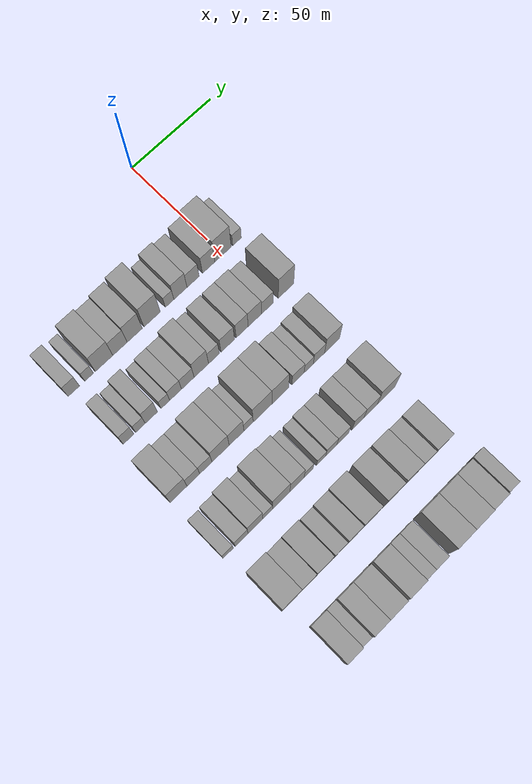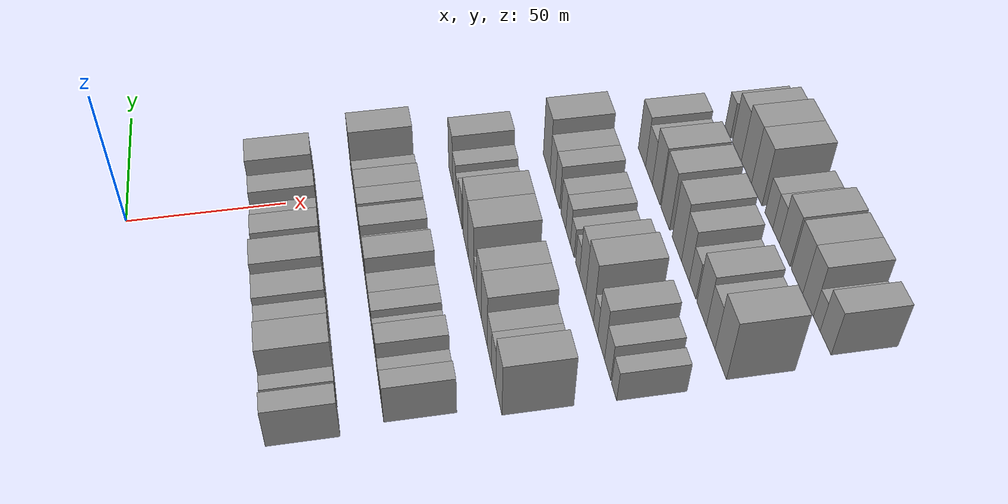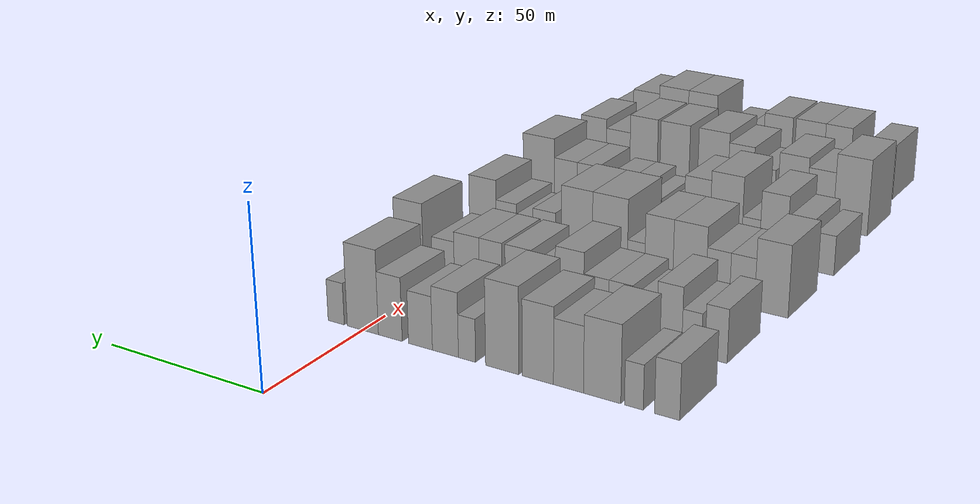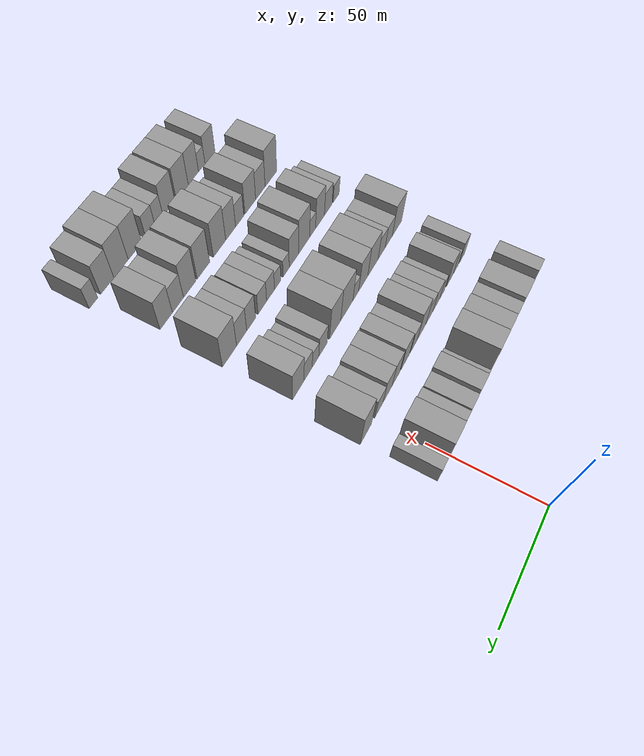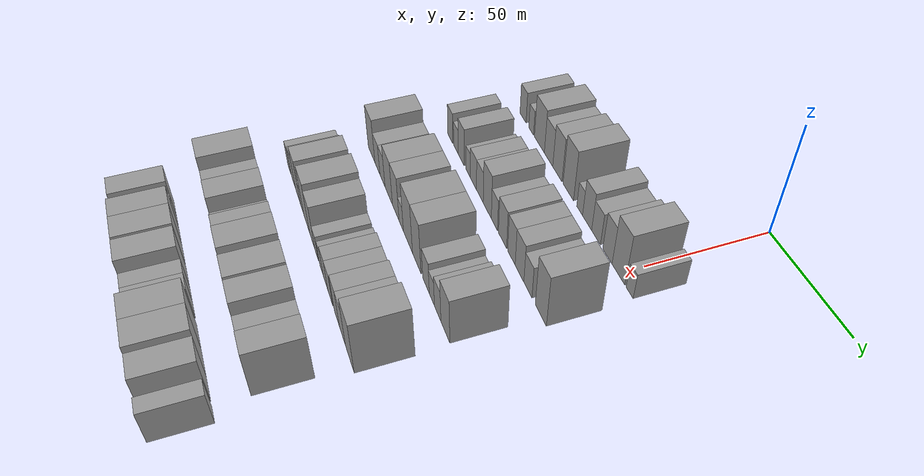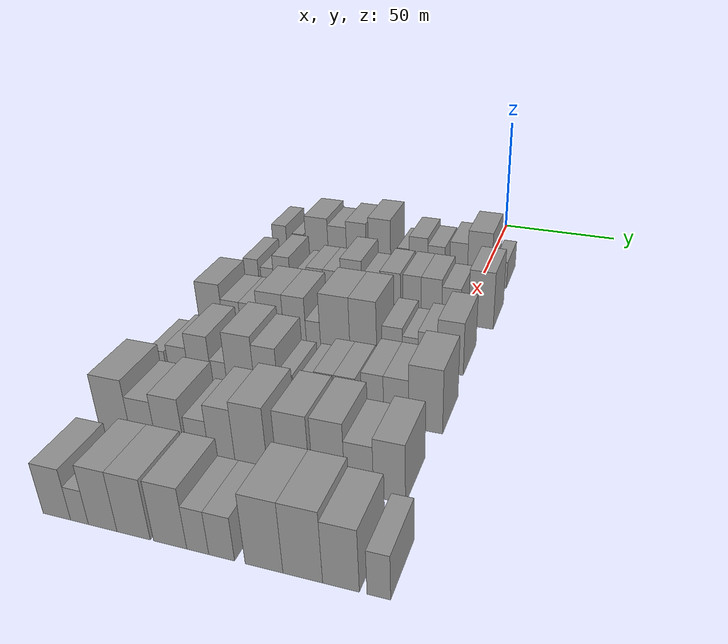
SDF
<sdf version="1.6">
 <world name="default">
  <model name="building_47">
   <static>1</static>
   <pose>50.0000 -89.1114 0 0.000000 0.000000 0.000000</pose>
   <link name="link">
    <pose>0 0 7.50 0 0 0</pose>
    <collision name="collision"><geometry><box><size>20.0000 6.6538 15.0000</size></box></geometry></collision>
    <visual name="visual">
     <cast_shadows>0</cast_shadows>
     <geometry><box><size>20.0000 6.6538 15.0000</size></box></geometry>
     <material>
      <script>
       <uri>model://grey_wall/materials/scripts</uri>
       <uri>model://grey_wall/materials/textures</uri>
       <name>vrc/grey_wall</name>
      </script>
     </material>
    </visual>
   </link>
  </model>
  <model name="building_48">
   <static>1</static>
   <pose>50.0000 -80.2523 0 0.000000 0.000000 0.000000</pose>
   <link name="link">
    <pose>0 0 6.00 0 0 0</pose>
    <collision name="collision"><geometry><box><size>20.0000 5.0644 12.0000</size></box></geometry></collision>
    <visual name="visual">
     <cast_shadows>0</cast_shadows>
     <geometry><box><size>20.0000 5.0644 12.0000</size></box></geometry>
     <material>
      <script>
       <uri>model://grey_wall/materials/scripts</uri>
       <uri>model://grey_wall/materials/textures</uri>
       <name>vrc/grey_wall</name>
      </script>
     </material>
    </visual>
   </link>
  </model>
  <model name="building_49">
   <static>1</static>
   <pose>50.0000 -71.5882 0 0.000000 0.000000 0.000000</pose>
   <link name="link">
    <pose>0 0 10.50 0 0 0</pose>
    <collision name="collision"><geometry><box><size>20.0000 10.2639 21.0000</size></box></geometry></collision>
    <visual name="visual">
     <cast_shadows>0</cast_shadows>
     <geometry><box><size>20.0000 10.2639 21.0000</size></box></geometry>
     <material>
      <script>
       <uri>model://grey_wall/materials/scripts</uri>
       <uri>model://grey_wall/materials/textures</uri>
       <name>vrc/grey_wall</name>
      </script>
     </material>
    </visual>
   </link>
  </model>
  <model name="building_50">
   <static>1</static>
   <pose>50.0000 -62.2357 0 0.000000 0.000000 0.000000</pose>
   <link name="link">
    <pose>0 0 9.00 0 0 0</pose>
    <collision name="collision"><geometry><box><size>20.0000 8.4412 18.0000</size></box></geometry></collision>
    <visual name="visual">
     <cast_shadows>0</cast_shadows>
     <geometry><box><size>20.0000 8.4412 18.0000</size></box></geometry>
     <material>
      <script>
       <uri>model://grey_wall/materials/scripts</uri>
       <uri>model://grey_wall/materials/textures</uri>
       <name>vrc/grey_wall</name>
      </script>
     </material>
    </visual>
   </link>
  </model>
  <model name="building_51">
   <static>1</static>
   <pose>50.0000 -53.5287 0 0.000000 0.000000 0.000000</pose>
   <link name="link">
    <pose>0 0 10.50 0 0 0</pose>
    <collision name="collision"><geometry><box><size>20.0000 8.9727 21.0000</size></box></geometry></collision>
    <visual name="visual">
     <cast_shadows>0</cast_shadows>
     <geometry><box><size>20.0000 8.9727 21.0000</size></box></geometry>
     <material>
      <script>
       <uri>model://grey_wall/materials/scripts</uri>
       <uri>model://grey_wall/materials/textures</uri>
       <name>vrc/grey_wall</name>
      </script>
     </material>
    </visual>
   </link>
  </model>
  <model name="building_52">
   <static>1</static>
   <pose>50.0000 -43.1414 0 0.000000 0.000000 0.000000</pose>
   <link name="link">
    <pose>0 0 12.00 0 0 0</pose>
    <collision name="collision"><geometry><box><size>20.0000 9.8020 24.0000</size></box></geometry></collision>
    <visual name="visual">
     <cast_shadows>0</cast_shadows>
     <geometry><box><size>20.0000 9.8020 24.0000</size></box></geometry>
     <material>
      <script>
       <uri>model://grey_wall/materials/scripts</uri>
       <uri>model://grey_wall/materials/textures</uri>
       <name>vrc/grey_wall</name>
      </script>
     </material>
    </visual>
   </link>
  </model>
  <model name="building_53">
   <static>1</static>
   <pose>50.0000 -32.6499 0 0.000000 0.000000 0.000000</pose>
   <link name="link">
    <pose>0 0 6.00 0 0 0</pose>
    <collision name="collision"><geometry><box><size>20.0000 5.1810 12.0000</size></box></geometry></collision>
    <visual name="visual">
     <cast_shadows>0</cast_shadows>
     <geometry><box><size>20.0000 5.1810 12.0000</size></box></geometry>
     <material>
      <script>
       <uri>model://grey_wall/materials/scripts</uri>
       <uri>model://grey_wall/materials/textures</uri>
       <name>vrc/grey_wall</name>
      </script>
     </material>
    </visual>
   </link>
  </model>
  <model name="building_54">
   <static>1</static>
   <pose>50.0000 -26.0676 0 0.000000 0.000000 0.000000</pose>
   <link name="link">
    <pose>0 0 9.00 0 0 0</pose>
    <collision name="collision"><geometry><box><size>20.0000 7.9837 18.0000</size></box></geometry></collision>
    <visual name="visual">
     <cast_shadows>0</cast_shadows>
     <geometry><box><size>20.0000 7.9837 18.0000</size></box></geometry>
     <material>
      <script>
       <uri>model://grey_wall/materials/scripts</uri>
       <uri>model://grey_wall/materials/textures</uri>
       <name>vrc/grey_wall</name>
      </script>
     </material>
    </visual>
   </link>
  </model>
  <model name="building_55">
   <static>1</static>
   <pose>50.0000 -18.3484 0 0.000000 0.000000 0.000000</pose>
   <link name="link">
    <pose>0 0 7.50 0 0 0</pose>
    <collision name="collision"><geometry><box><size>20.0000 7.4547 15.0000</size></box></geometry></collision>
    <visual name="visual">
     <cast_shadows>0</cast_shadows>
     <geometry><box><size>20.0000 7.4547 15.0000</size></box></geometry>
     <material>
      <script>
       <uri>model://grey_wall/materials/scripts</uri>
       <uri>model://grey_wall/materials/textures</uri>
       <name>vrc/grey_wall</name>
      </script>
     </material>
    </visual>
   </link>
  </model>
  <model name="building_56">
   <static>1</static>
   <pose>50.0000 -8.8292 0 0.000000 0.000000 0.000000</pose>
   <link name="link">
    <pose>0 0 9.00 0 0 0</pose>
    <collision name="collision"><geometry><box><size>20.0000 7.5837 18.0000</size></box></geometry></collision>
    <visual name="visual">
     <cast_shadows>0</cast_shadows>
     <geometry><box><size>20.0000 7.5837 18.0000</size></box></geometry>
     <material>
      <script>
       <uri>model://grey_wall/materials/scripts</uri>
       <uri>model://grey_wall/materials/textures</uri>
       <name>vrc/grey_wall</name>
      </script>
     </material>
    </visual>
   </link>
  </model>
  <model name="building_57">
   <static>1</static>
   <pose>50.0000 0.0270 0 0.000000 0.000000 0.000000</pose>
   <link name="link">
    <pose>0 0 12.00 0 0 0</pose>
    <collision name="collision"><geometry><box><size>20.0000 10.1287 24.0000</size></box></geometry></collision>
    <visual name="visual">
     <cast_shadows>0</cast_shadows>
     <geometry><box><size>20.0000 10.1287 24.0000</size></box></geometry>
     <material>
      <script>
       <uri>model://grey_wall/materials/scripts</uri>
       <uri>model://grey_wall/materials/textures</uri>
       <name>vrc/grey_wall</name>
      </script>
     </material>
    </visual>
   </link>
  </model>
  <model name="building_58">
   <static>1</static>
   <pose>50.0000 8.7703 0 0.000000 0.000000 0.000000</pose>
   <link name="link">
    <pose>0 0 6.00 0 0 0</pose>
    <collision name="collision"><geometry><box><size>20.0000 5.3580 12.0000</size></box></geometry></collision>
    <visual name="visual">
     <cast_shadows>0</cast_shadows>
     <geometry><box><size>20.0000 5.3580 12.0000</size></box></geometry>
     <material>
      <script>
       <uri>model://grey_wall/materials/scripts</uri>
       <uri>model://grey_wall/materials/textures</uri>
       <name>vrc/grey_wall</name>
      </script>
     </material>
    </visual>
   </link>
  </model>
  <model name="building_169">
   <static>1</static>
   <pose>82.0000 -86.5748 0 0.000000 0.000000 0.000000</pose>
   <link name="link">
    <pose>0 0 7.50 0 0 0</pose>
    <collision name="collision"><geometry><box><size>20.0000 6.1973 15.0000</size></box></geometry></collision>
    <visual name="visual">
     <cast_shadows>0</cast_shadows>
     <geometry><box><size>20.0000 6.1973 15.0000</size></box></geometry>
     <material>
      <script>
       <uri>model://grey_wall/materials/scripts</uri>
       <uri>model://grey_wall/materials/textures</uri>
       <name>vrc/grey_wall</name>
      </script>
     </material>
    </visual>
   </link>
  </model>
  <model name="building_170">
   <static>1</static>
   <pose>82.0000 -79.7055 0 0.000000 0.000000 0.000000</pose>
   <link name="link">
    <pose>0 0 6.00 0 0 0</pose>
    <collision name="collision"><geometry><box><size>20.0000 5.5413 12.0000</size></box></geometry></collision>
    <visual name="visual">
     <cast_shadows>0</cast_shadows>
     <geometry><box><size>20.0000 5.5413 12.0000</size></box></geometry>
     <material>
      <script>
       <uri>model://grey_wall/materials/scripts</uri>
       <uri>model://grey_wall/materials/textures</uri>
       <name>vrc/grey_wall</name>
      </script>
     </material>
    </visual>
   </link>
  </model>
  <model name="building_171">
   <static>1</static>
   <pose>82.0000 -73.3323 0 0.000000 0.000000 0.000000</pose>
   <link name="link">
    <pose>0 0 9.00 0 0 0</pose>
    <collision name="collision"><geometry><box><size>20.0000 7.2050 18.0000</size></box></geometry></collision>
    <visual name="visual">
     <cast_shadows>0</cast_shadows>
     <geometry><box><size>20.0000 7.2050 18.0000</size></box></geometry>
     <material>
      <script>
       <uri>model://grey_wall/materials/scripts</uri>
       <uri>model://grey_wall/materials/textures</uri>
       <name>vrc/grey_wall</name>
      </script>
     </material>
    </visual>
   </link>
  </model>
  <model name="building_172">
   <static>1</static>
   <pose>82.0000 -65.1794 0 0.000000 0.000000 0.000000</pose>
   <link name="link">
    <pose>0 0 6.00 0 0 0</pose>
    <collision name="collision"><geometry><box><size>20.0000 5.1008 12.0000</size></box></geometry></collision>
    <visual name="visual">
     <cast_shadows>0</cast_shadows>
     <geometry><box><size>20.0000 5.1008 12.0000</size></box></geometry>
     <material>
      <script>
       <uri>model://grey_wall/materials/scripts</uri>
       <uri>model://grey_wall/materials/textures</uri>
       <name>vrc/grey_wall</name>
      </script>
     </material>
    </visual>
   </link>
  </model>
  <model name="building_173">
   <static>1</static>
   <pose>82.0000 -59.1339 0 0.000000 0.000000 0.000000</pose>
   <link name="link">
    <pose>0 0 7.50 0 0 0</pose>
    <collision name="collision"><geometry><box><size>20.0000 6.9902 15.0000</size></box></geometry></collision>
    <visual name="visual">
     <cast_shadows>0</cast_shadows>
     <geometry><box><size>20.0000 6.9902 15.0000</size></box></geometry>
     <material>
      <script>
       <uri>model://grey_wall/materials/scripts</uri>
       <uri>model://grey_wall/materials/textures</uri>
       <name>vrc/grey_wall</name>
      </script>
     </material>
    </visual>
   </link>
  </model>
  <model name="building_174">
   <static>1</static>
   <pose>82.0000 -51.8982 0 0.000000 0.000000 0.000000</pose>
   <link name="link">
    <pose>0 0 7.50 0 0 0</pose>
    <collision name="collision"><geometry><box><size>20.0000 7.4813 15.0000</size></box></geometry></collision>
    <visual name="visual">
     <cast_shadows>0</cast_shadows>
     <geometry><box><size>20.0000 7.4813 15.0000</size></box></geometry>
     <material>
      <script>
       <uri>model://grey_wall/materials/scripts</uri>
       <uri>model://grey_wall/materials/textures</uri>
       <name>vrc/grey_wall</name>
      </script>
     </material>
    </visual>
   </link>
  </model>
  <model name="building_175">
   <static>1</static>
   <pose>82.0000 -43.8235 0 0.000000 0.000000 0.000000</pose>
   <link name="link">
    <pose>0 0 10.50 0 0 0</pose>
    <collision name="collision"><geometry><box><size>20.0000 8.6681 21.0000</size></box></geometry></collision>
    <visual name="visual">
     <cast_shadows>0</cast_shadows>
     <geometry><box><size>20.0000 8.6681 21.0000</size></box></geometry>
     <material>
      <script>
       <uri>model://grey_wall/materials/scripts</uri>
       <uri>model://grey_wall/materials/textures</uri>
       <name>vrc/grey_wall</name>
      </script>
     </material>
    </visual>
   </link>
  </model>
  <model name="building_176">
   <static>1</static>
   <pose>82.0000 -36.2660 0 0.000000 0.000000 0.000000</pose>
   <link name="link">
    <pose>0 0 7.50 0 0 0</pose>
    <collision name="collision"><geometry><box><size>20.0000 6.4470 15.0000</size></box></geometry></collision>
    <visual name="visual">
     <cast_shadows>0</cast_shadows>
     <geometry><box><size>20.0000 6.4470 15.0000</size></box></geometry>
     <material>
      <script>
       <uri>model://grey_wall/materials/scripts</uri>
       <uri>model://grey_wall/materials/textures</uri>
       <name>vrc/grey_wall</name>
      </script>
     </material>
    </visual>
   </link>
  </model>
  <model name="building_177">
   <static>1</static>
   <pose>82.0000 -27.9535 0 0.000000 0.000000 0.000000</pose>
   <link name="link">
    <pose>0 0 9.00 0 0 0</pose>
    <collision name="collision"><geometry><box><size>20.0000 8.1780 18.0000</size></box></geometry></collision>
    <visual name="visual">
     <cast_shadows>0</cast_shadows>
     <geometry><box><size>20.0000 8.1780 18.0000</size></box></geometry>
     <material>
      <script>
       <uri>model://grey_wall/materials/scripts</uri>
       <uri>model://grey_wall/materials/textures</uri>
       <name>vrc/grey_wall</name>
      </script>
     </material>
    </visual>
   </link>
  </model>
  <model name="building_178">
   <static>1</static>
   <pose>82.0000 -19.2156 0 0.000000 0.000000 0.000000</pose>
   <link name="link">
    <pose>0 0 9.00 0 0 0</pose>
    <collision name="collision"><geometry><box><size>20.0000 7.2979 18.0000</size></box></geometry></collision>
    <visual name="visual">
     <cast_shadows>0</cast_shadows>
     <geometry><box><size>20.0000 7.2979 18.0000</size></box></geometry>
     <material>
      <script>
       <uri>model://grey_wall/materials/scripts</uri>
       <uri>model://grey_wall/materials/textures</uri>
       <name>vrc/grey_wall</name>
      </script>
     </material>
    </visual>
   </link>
  </model>
  <model name="building_179">
   <static>1</static>
   <pose>82.0000 -11.4724 0 0.000000 0.000000 0.000000</pose>
   <link name="link">
    <pose>0 0 9.00 0 0 0</pose>
    <collision name="collision"><geometry><box><size>20.0000 8.1885 18.0000</size></box></geometry></collision>
    <visual name="visual">
     <cast_shadows>0</cast_shadows>
     <geometry><box><size>20.0000 8.1885 18.0000</size></box></geometry>
     <material>
      <script>
       <uri>model://grey_wall/materials/scripts</uri>
       <uri>model://grey_wall/materials/textures</uri>
       <name>vrc/grey_wall</name>
      </script>
     </material>
    </visual>
   </link>
  </model>
  <model name="building_180">
   <static>1</static>
   <pose>82.0000 -3.6989 0 0.000000 0.000000 0.000000</pose>
   <link name="link">
    <pose>0 0 7.50 0 0 0</pose>
    <collision name="collision"><geometry><box><size>20.0000 7.3584 15.0000</size></box></geometry></collision>
    <visual name="visual">
     <cast_shadows>0</cast_shadows>
     <geometry><box><size>20.0000 7.3584 15.0000</size></box></geometry>
     <material>
      <script>
       <uri>model://grey_wall/materials/scripts</uri>
       <uri>model://grey_wall/materials/textures</uri>
       <name>vrc/grey_wall</name>
      </script>
     </material>
    </visual>
   </link>
  </model>
  <model name="building_181">
   <static>1</static>
   <pose>82.0000 7.8106 0 0.000000 0.000000 0.000000</pose>
   <link name="link">
    <pose>0 0 12.00 0 0 0</pose>
    <collision name="collision"><geometry><box><size>20.0000 9.6605 24.0000</size></box></geometry></collision>
    <visual name="visual">
     <cast_shadows>0</cast_shadows>
     <geometry><box><size>20.0000 9.6605 24.0000</size></box></geometry>
     <material>
      <script>
       <uri>model://grey_wall/materials/scripts</uri>
       <uri>model://grey_wall/materials/textures</uri>
       <name>vrc/grey_wall</name>
      </script>
     </material>
    </visual>
   </link>
  </model>
  <model name="building_289">
   <static>1</static>
   <pose>114.0000 -87.5778 0 0.000000 0.000000 0.000000</pose>
   <link name="link">
    <pose>0 0 10.50 0 0 0</pose>
    <collision name="collision"><geometry><box><size>20.0000 9.7743 21.0000</size></box></geometry></collision>
    <visual name="visual">
     <cast_shadows>0</cast_shadows>
     <geometry><box><size>20.0000 9.7743 21.0000</size></box></geometry>
     <material>
      <script>
       <uri>model://grey_wall/materials/scripts</uri>
       <uri>model://grey_wall/materials/textures</uri>
       <name>vrc/grey_wall</name>
      </script>
     </material>
    </visual>
   </link>
  </model>
  <model name="building_290">
   <static>1</static>
   <pose>114.0000 -79.0157 0 0.000000 0.000000 0.000000</pose>
   <link name="link">
    <pose>0 0 7.50 0 0 0</pose>
    <collision name="collision"><geometry><box><size>20.0000 7.3500 15.0000</size></box></geometry></collision>
    <visual name="visual">
     <cast_shadows>0</cast_shadows>
     <geometry><box><size>20.0000 7.3500 15.0000</size></box></geometry>
     <material>
      <script>
       <uri>model://grey_wall/materials/scripts</uri>
       <uri>model://grey_wall/materials/textures</uri>
       <name>vrc/grey_wall</name>
      </script>
     </material>
    </visual>
   </link>
  </model>
  <model name="building_291">
   <static>1</static>
   <pose>114.0000 -71.7936 0 0.000000 0.000000 0.000000</pose>
   <link name="link">
    <pose>0 0 7.50 0 0 0</pose>
    <collision name="collision"><geometry><box><size>20.0000 7.0943 15.0000</size></box></geometry></collision>
    <visual name="visual">
     <cast_shadows>0</cast_shadows>
     <geometry><box><size>20.0000 7.0943 15.0000</size></box></geometry>
     <material>
      <script>
       <uri>model://grey_wall/materials/scripts</uri>
       <uri>model://grey_wall/materials/textures</uri>
       <name>vrc/grey_wall</name>
      </script>
     </material>
    </visual>
   </link>
  </model>
  <model name="building_292">
   <static>1</static>
   <pose>114.0000 -63.1746 0 0.000000 0.000000 0.000000</pose>
   <link name="link">
    <pose>0 0 10.50 0 0 0</pose>
    <collision name="collision"><geometry><box><size>20.0000 10.1437 21.0000</size></box></geometry></collision>
    <visual name="visual">
     <cast_shadows>0</cast_shadows>
     <geometry><box><size>20.0000 10.1437 21.0000</size></box></geometry>
     <material>
      <script>
       <uri>model://grey_wall/materials/scripts</uri>
       <uri>model://grey_wall/materials/textures</uri>
       <name>vrc/grey_wall</name>
      </script>
     </material>
    </visual>
   </link>
  </model>
  <model name="building_293">
   <static>1</static>
   <pose>114.0000 -53.7460 0 0.000000 0.000000 0.000000</pose>
   <link name="link">
    <pose>0 0 10.50 0 0 0</pose>
    <collision name="collision"><geometry><box><size>20.0000 8.7136 21.0000</size></box></geometry></collision>
    <visual name="visual">
     <cast_shadows>0</cast_shadows>
     <geometry><box><size>20.0000 8.7136 21.0000</size></box></geometry>
     <material>
      <script>
       <uri>model://grey_wall/materials/scripts</uri>
       <uri>model://grey_wall/materials/textures</uri>
       <name>vrc/grey_wall</name>
      </script>
     </material>
    </visual>
   </link>
  </model>
  <model name="building_294">
   <static>1</static>
   <pose>114.0000 -46.6439 0 0.000000 0.000000 0.000000</pose>
   <link name="link">
    <pose>0 0 6.00 0 0 0</pose>
    <collision name="collision"><geometry><box><size>20.0000 5.4905 12.0000</size></box></geometry></collision>
    <visual name="visual">
     <cast_shadows>0</cast_shadows>
     <geometry><box><size>20.0000 5.4905 12.0000</size></box></geometry>
     <material>
      <script>
       <uri>model://grey_wall/materials/scripts</uri>
       <uri>model://grey_wall/materials/textures</uri>
       <name>vrc/grey_wall</name>
      </script>
     </material>
    </visual>
   </link>
  </model>
  <model name="building_295">
   <static>1</static>
   <pose>114.0000 -38.2753 0 0.000000 0.000000 0.000000</pose>
   <link name="link">
    <pose>0 0 12.00 0 0 0</pose>
    <collision name="collision"><geometry><box><size>20.0000 11.2466 24.0000</size></box></geometry></collision>
    <visual name="visual">
     <cast_shadows>0</cast_shadows>
     <geometry><box><size>20.0000 11.2466 24.0000</size></box></geometry>
     <material>
      <script>
       <uri>model://grey_wall/materials/scripts</uri>
       <uri>model://grey_wall/materials/textures</uri>
       <name>vrc/grey_wall</name>
      </script>
     </material>
    </visual>
   </link>
  </model>
  <model name="building_296">
   <static>1</static>
   <pose>114.0000 -27.6060 0 0.000000 0.000000 0.000000</pose>
   <link name="link">
    <pose>0 0 12.00 0 0 0</pose>
    <collision name="collision"><geometry><box><size>20.0000 10.0921 24.0000</size></box></geometry></collision>
    <visual name="visual">
     <cast_shadows>0</cast_shadows>
     <geometry><box><size>20.0000 10.0921 24.0000</size></box></geometry>
     <material>
      <script>
       <uri>model://grey_wall/materials/scripts</uri>
       <uri>model://grey_wall/materials/textures</uri>
       <name>vrc/grey_wall</name>
      </script>
     </material>
    </visual>
   </link>
  </model>
  <model name="building_297">
   <static>1</static>
   <pose>114.0000 -16.8384 0 0.000000 0.000000 0.000000</pose>
   <link name="link">
    <pose>0 0 7.50 0 0 0</pose>
    <collision name="collision"><geometry><box><size>20.0000 7.4430 15.0000</size></box></geometry></collision>
    <visual name="visual">
     <cast_shadows>0</cast_shadows>
     <geometry><box><size>20.0000 7.4430 15.0000</size></box></geometry>
     <material>
      <script>
       <uri>model://grey_wall/materials/scripts</uri>
       <uri>model://grey_wall/materials/textures</uri>
       <name>vrc/grey_wall</name>
      </script>
     </material>
    </visual>
   </link>
  </model>
  <model name="building_298">
   <static>1</static>
   <pose>114.0000 -10.2827 0 0.000000 0.000000 0.000000</pose>
   <link name="link">
    <pose>0 0 6.00 0 0 0</pose>
    <collision name="collision"><geometry><box><size>20.0000 5.6685 12.0000</size></box></geometry></collision>
    <visual name="visual">
     <cast_shadows>0</cast_shadows>
     <geometry><box><size>20.0000 5.6685 12.0000</size></box></geometry>
     <material>
      <script>
       <uri>model://grey_wall/materials/scripts</uri>
       <uri>model://grey_wall/materials/textures</uri>
       <name>vrc/grey_wall</name>
      </script>
     </material>
    </visual>
   </link>
  </model>
  <model name="building_299">
   <static>1</static>
   <pose>114.0000 -3.9795 0 0.000000 0.000000 0.000000</pose>
   <link name="link">
    <pose>0 0 7.50 0 0 0</pose>
    <collision name="collision"><geometry><box><size>20.0000 6.9378 15.0000</size></box></geometry></collision>
    <visual name="visual">
     <cast_shadows>0</cast_shadows>
     <geometry><box><size>20.0000 6.9378 15.0000</size></box></geometry>
     <material>
      <script>
       <uri>model://grey_wall/materials/scripts</uri>
       <uri>model://grey_wall/materials/textures</uri>
       <name>vrc/grey_wall</name>
      </script>
     </material>
    </visual>
   </link>
  </model>
  <model name="building_300">
   <static>1</static>
   <pose>114.0000 4.1435 0 0.000000 0.000000 0.000000</pose>
   <link name="link">
    <pose>0 0 10.50 0 0 0</pose>
    <collision name="collision"><geometry><box><size>20.0000 9.3082 21.0000</size></box></geometry></collision>
    <visual name="visual">
     <cast_shadows>0</cast_shadows>
     <geometry><box><size>20.0000 9.3082 21.0000</size></box></geometry>
     <material>
      <script>
       <uri>model://grey_wall/materials/scripts</uri>
       <uri>model://grey_wall/materials/textures</uri>
       <name>vrc/grey_wall</name>
      </script>
     </material>
    </visual>
   </link>
  </model>
  <model name="building_407">
   <static>1</static>
   <pose>146.0000 -89.7184 0 0.000000 0.000000 0.000000</pose>
   <link name="link">
    <pose>0 0 6.00 0 0 0</pose>
    <collision name="collision"><geometry><box><size>20.0000 5.9228 12.0000</size></box></geometry></collision>
    <visual name="visual">
     <cast_shadows>0</cast_shadows>
     <geometry><box><size>20.0000 5.9228 12.0000</size></box></geometry>
     <material>
      <script>
       <uri>model://grey_wall/materials/scripts</uri>
       <uri>model://grey_wall/materials/textures</uri>
       <name>vrc/grey_wall</name>
      </script>
     </material>
    </visual>
   </link>
  </model>
  <model name="building_408">
   <static>1</static>
   <pose>146.0000 -82.0194 0 0.000000 0.000000 0.000000</pose>
   <link name="link">
    <pose>0 0 7.50 0 0 0</pose>
    <collision name="collision"><geometry><box><size>20.0000 7.4752 15.0000</size></box></geometry></collision>
    <visual name="visual">
     <cast_shadows>0</cast_shadows>
     <geometry><box><size>20.0000 7.4752 15.0000</size></box></geometry>
     <material>
      <script>
       <uri>model://grey_wall/materials/scripts</uri>
       <uri>model://grey_wall/materials/textures</uri>
       <name>vrc/grey_wall</name>
      </script>
     </material>
    </visual>
   </link>
  </model>
  <model name="building_409">
   <static>1</static>
   <pose>146.0000 -74.0282 0 0.000000 0.000000 0.000000</pose>
   <link name="link">
    <pose>0 0 10.50 0 0 0</pose>
    <collision name="collision"><geometry><box><size>20.0000 8.5072 21.0000</size></box></geometry></collision>
    <visual name="visual">
     <cast_shadows>0</cast_shadows>
     <geometry><box><size>20.0000 8.5072 21.0000</size></box></geometry>
     <material>
      <script>
       <uri>model://grey_wall/materials/scripts</uri>
       <uri>model://grey_wall/materials/textures</uri>
       <name>vrc/grey_wall</name>
      </script>
     </material>
    </visual>
   </link>
  </model>
  <model name="building_410">
   <static>1</static>
   <pose>146.0000 -66.9501 0 0.000000 0.000000 0.000000</pose>
   <link name="link">
    <pose>0 0 6.00 0 0 0</pose>
    <collision name="collision"><geometry><box><size>20.0000 5.6491 12.0000</size></box></geometry></collision>
    <visual name="visual">
     <cast_shadows>0</cast_shadows>
     <geometry><box><size>20.0000 5.6491 12.0000</size></box></geometry>
     <material>
      <script>
       <uri>model://grey_wall/materials/scripts</uri>
       <uri>model://grey_wall/materials/textures</uri>
       <name>vrc/grey_wall</name>
      </script>
     </material>
    </visual>
   </link>
  </model>
  <model name="building_411">
   <static>1</static>
   <pose>146.0000 -59.0236 0 0.000000 0.000000 0.000000</pose>
   <link name="link">
    <pose>0 0 12.00 0 0 0</pose>
    <collision name="collision"><geometry><box><size>20.0000 10.2037 24.0000</size></box></geometry></collision>
    <visual name="visual">
     <cast_shadows>0</cast_shadows>
     <geometry><box><size>20.0000 10.2037 24.0000</size></box></geometry>
     <material>
      <script>
       <uri>model://grey_wall/materials/scripts</uri>
       <uri>model://grey_wall/materials/textures</uri>
       <name>vrc/grey_wall</name>
      </script>
     </material>
    </visual>
   </link>
  </model>
  <model name="building_412">
   <static>1</static>
   <pose>146.0000 -49.7095 0 0.000000 0.000000 0.000000</pose>
   <link name="link">
    <pose>0 0 10.50 0 0 0</pose>
    <collision name="collision"><geometry><box><size>20.0000 8.4246 21.0000</size></box></geometry></collision>
    <visual name="visual">
     <cast_shadows>0</cast_shadows>
     <geometry><box><size>20.0000 8.4246 21.0000</size></box></geometry>
     <material>
      <script>
       <uri>model://grey_wall/materials/scripts</uri>
       <uri>model://grey_wall/materials/textures</uri>
       <name>vrc/grey_wall</name>
      </script>
     </material>
    </visual>
   </link>
  </model>
  <model name="building_413">
   <static>1</static>
   <pose>146.0000 -42.7524 0 0.000000 0.000000 0.000000</pose>
   <link name="link">
    <pose>0 0 6.00 0 0 0</pose>
    <collision name="collision"><geometry><box><size>20.0000 5.4895 12.0000</size></box></geometry></collision>
    <visual name="visual">
     <cast_shadows>0</cast_shadows>
     <geometry><box><size>20.0000 5.4895 12.0000</size></box></geometry>
     <material>
      <script>
       <uri>model://grey_wall/materials/scripts</uri>
       <uri>model://grey_wall/materials/textures</uri>
       <name>vrc/grey_wall</name>
      </script>
     </material>
    </visual>
   </link>
  </model>
  <model name="building_414">
   <static>1</static>
   <pose>146.0000 -35.2825 0 0.000000 0.000000 0.000000</pose>
   <link name="link">
    <pose>0 0 6.00 0 0 0</pose>
    <collision name="collision"><geometry><box><size>20.0000 5.4504 12.0000</size></box></geometry></collision>
    <visual name="visual">
     <cast_shadows>0</cast_shadows>
     <geometry><box><size>20.0000 5.4504 12.0000</size></box></geometry>
     <material>
      <script>
       <uri>model://grey_wall/materials/scripts</uri>
       <uri>model://grey_wall/materials/textures</uri>
       <name>vrc/grey_wall</name>
      </script>
     </material>
    </visual>
   </link>
  </model>
  <model name="building_415">
   <static>1</static>
   <pose>146.0000 -29.1993 0 0.000000 0.000000 0.000000</pose>
   <link name="link">
    <pose>0 0 7.50 0 0 0</pose>
    <collision name="collision"><geometry><box><size>20.0000 6.7161 15.0000</size></box></geometry></collision>
    <visual name="visual">
     <cast_shadows>0</cast_shadows>
     <geometry><box><size>20.0000 6.7161 15.0000</size></box></geometry>
     <material>
      <script>
       <uri>model://grey_wall/materials/scripts</uri>
       <uri>model://grey_wall/materials/textures</uri>
       <name>vrc/grey_wall</name>
      </script>
     </material>
    </visual>
   </link>
  </model>
  <model name="building_416">
   <static>1</static>
   <pose>146.0000 -22.2157 0 0.000000 0.000000 0.000000</pose>
   <link name="link">
    <pose>0 0 7.50 0 0 0</pose>
    <collision name="collision"><geometry><box><size>20.0000 7.2511 15.0000</size></box></geometry></collision>
    <visual name="visual">
     <cast_shadows>0</cast_shadows>
     <geometry><box><size>20.0000 7.2511 15.0000</size></box></geometry>
     <material>
      <script>
       <uri>model://grey_wall/materials/scripts</uri>
       <uri>model://grey_wall/materials/textures</uri>
       <name>vrc/grey_wall</name>
      </script>
     </material>
    </visual>
   </link>
  </model>
  <model name="building_417">
   <static>1</static>
   <pose>146.0000 -12.9556 0 0.000000 0.000000 0.000000</pose>
   <link name="link">
    <pose>0 0 9.00 0 0 0</pose>
    <collision name="collision"><geometry><box><size>20.0000 7.2691 18.0000</size></box></geometry></collision>
    <visual name="visual">
     <cast_shadows>0</cast_shadows>
     <geometry><box><size>20.0000 7.2691 18.0000</size></box></geometry>
     <material>
      <script>
       <uri>model://grey_wall/materials/scripts</uri>
       <uri>model://grey_wall/materials/textures</uri>
       <name>vrc/grey_wall</name>
      </script>
     </material>
    </visual>
   </link>
  </model>
  <model name="building_418">
   <static>1</static>
   <pose>146.0000 -5.2402 0 0.000000 0.000000 0.000000</pose>
   <link name="link">
    <pose>0 0 9.00 0 0 0</pose>
    <collision name="collision"><geometry><box><size>20.0000 8.1616 18.0000</size></box></geometry></collision>
    <visual name="visual">
     <cast_shadows>0</cast_shadows>
     <geometry><box><size>20.0000 8.1616 18.0000</size></box></geometry>
     <material>
      <script>
       <uri>model://grey_wall/materials/scripts</uri>
       <uri>model://grey_wall/materials/textures</uri>
       <name>vrc/grey_wall</name>
      </script>
     </material>
    </visual>
   </link>
  </model>
  <model name="building_419">
   <static>1</static>
   <pose>146.0000 4.3986 0 0.000000 0.000000 0.000000</pose>
   <link name="link">
    <pose>0 0 12.00 0 0 0</pose>
    <collision name="collision"><geometry><box><size>20.0000 11.1161 24.0000</size></box></geometry></collision>
    <visual name="visual">
     <cast_shadows>0</cast_shadows>
     <geometry><box><size>20.0000 11.1161 24.0000</size></box></geometry>
     <material>
      <script>
       <uri>model://grey_wall/materials/scripts</uri>
       <uri>model://grey_wall/materials/textures</uri>
       <name>vrc/grey_wall</name>
      </script>
     </material>
    </visual>
   </link>
  </model>
  <model name="building_528">
   <static>1</static>
   <pose>178.0000 -85.0503 0 0.000000 0.000000 0.000000</pose>
   <link name="link">
    <pose>0 0 12.00 0 0 0</pose>
    <collision name="collision"><geometry><box><size>20.0000 10.8799 24.0000</size></box></geometry></collision>
    <visual name="visual">
     <cast_shadows>0</cast_shadows>
     <geometry><box><size>20.0000 10.8799 24.0000</size></box></geometry>
     <material>
      <script>
       <uri>model://grey_wall/materials/scripts</uri>
       <uri>model://grey_wall/materials/textures</uri>
       <name>vrc/grey_wall</name>
      </script>
     </material>
    </visual>
   </link>
  </model>
  <model name="building_529">
   <static>1</static>
   <pose>178.0000 -75.3057 0 0.000000 0.000000 0.000000</pose>
   <link name="link">
    <pose>0 0 9.00 0 0 0</pose>
    <collision name="collision"><geometry><box><size>20.0000 8.6093 18.0000</size></box></geometry></collision>
    <visual name="visual">
     <cast_shadows>0</cast_shadows>
     <geometry><box><size>20.0000 8.6093 18.0000</size></box></geometry>
     <material>
      <script>
       <uri>model://grey_wall/materials/scripts</uri>
       <uri>model://grey_wall/materials/textures</uri>
       <name>vrc/grey_wall</name>
      </script>
     </material>
    </visual>
   </link>
  </model>
  <model name="building_530">
   <static>1</static>
   <pose>178.0000 -66.1988 0 0.000000 0.000000 0.000000</pose>
   <link name="link">
    <pose>0 0 10.50 0 0 0</pose>
    <collision name="collision"><geometry><box><size>20.0000 9.6046 21.0000</size></box></geometry></collision>
    <visual name="visual">
     <cast_shadows>0</cast_shadows>
     <geometry><box><size>20.0000 9.6046 21.0000</size></box></geometry>
     <material>
      <script>
       <uri>model://grey_wall/materials/scripts</uri>
       <uri>model://grey_wall/materials/textures</uri>
       <name>vrc/grey_wall</name>
      </script>
     </material>
    </visual>
   </link>
  </model>
  <model name="building_531">
   <static>1</static>
   <pose>178.0000 -56.7886 0 0.000000 0.000000 0.000000</pose>
   <link name="link">
    <pose>0 0 7.50 0 0 0</pose>
    <collision name="collision"><geometry><box><size>20.0000 7.2157 15.0000</size></box></geometry></collision>
    <visual name="visual">
     <cast_shadows>0</cast_shadows>
     <geometry><box><size>20.0000 7.2157 15.0000</size></box></geometry>
     <material>
      <script>
       <uri>model://grey_wall/materials/scripts</uri>
       <uri>model://grey_wall/materials/textures</uri>
       <name>vrc/grey_wall</name>
      </script>
     </material>
    </visual>
   </link>
  </model>
  <model name="building_532">
   <static>1</static>
   <pose>178.0000 -48.9332 0 0.000000 0.000000 0.000000</pose>
   <link name="link">
    <pose>0 0 10.50 0 0 0</pose>
    <collision name="collision"><geometry><box><size>20.0000 8.4951 21.0000</size></box></geometry></collision>
    <visual name="visual">
     <cast_shadows>0</cast_shadows>
     <geometry><box><size>20.0000 8.4951 21.0000</size></box></geometry>
     <material>
      <script>
       <uri>model://grey_wall/materials/scripts</uri>
       <uri>model://grey_wall/materials/textures</uri>
       <name>vrc/grey_wall</name>
      </script>
     </material>
    </visual>
   </link>
  </model>
  <model name="building_533">
   <static>1</static>
   <pose>178.0000 -39.4747 0 0.000000 0.000000 0.000000</pose>
   <link name="link">
    <pose>0 0 12.00 0 0 0</pose>
    <collision name="collision"><geometry><box><size>20.0000 10.4219 24.0000</size></box></geometry></collision>
    <visual name="visual">
     <cast_shadows>0</cast_shadows>
     <geometry><box><size>20.0000 10.4219 24.0000</size></box></geometry>
     <material>
      <script>
       <uri>model://grey_wall/materials/scripts</uri>
       <uri>model://grey_wall/materials/textures</uri>
       <name>vrc/grey_wall</name>
      </script>
     </material>
    </visual>
   </link>
  </model>
  <model name="building_534">
   <static>1</static>
   <pose>178.0000 -26.1584 0 0.000000 0.000000 0.000000</pose>
   <link name="link">
    <pose>0 0 12.00 0 0 0</pose>
    <collision name="collision"><geometry><box><size>20.0000 10.2108 24.0000</size></box></geometry></collision>
    <visual name="visual">
     <cast_shadows>0</cast_shadows>
     <geometry><box><size>20.0000 10.2108 24.0000</size></box></geometry>
     <material>
      <script>
       <uri>model://grey_wall/materials/scripts</uri>
       <uri>model://grey_wall/materials/textures</uri>
       <name>vrc/grey_wall</name>
      </script>
     </material>
    </visual>
   </link>
  </model>
  <model name="building_535">
   <static>1</static>
   <pose>178.0000 -15.1530 0 0.000000 0.000000 0.000000</pose>
   <link name="link">
    <pose>0 0 12.00 0 0 0</pose>
    <collision name="collision"><geometry><box><size>20.0000 9.8000 24.0000</size></box></geometry></collision>
    <visual name="visual">
     <cast_shadows>0</cast_shadows>
     <geometry><box><size>20.0000 9.8000 24.0000</size></box></geometry>
     <material>
      <script>
       <uri>model://grey_wall/materials/scripts</uri>
       <uri>model://grey_wall/materials/textures</uri>
       <name>vrc/grey_wall</name>
      </script>
     </material>
    </visual>
   </link>
  </model>
  <model name="building_536">
   <static>1</static>
   <pose>178.0000 -5.9616 0 0.000000 0.000000 0.000000</pose>
   <link name="link">
    <pose>0 0 9.00 0 0 0</pose>
    <collision name="collision"><geometry><box><size>20.0000 8.5829 18.0000</size></box></geometry></collision>
    <visual name="visual">
     <cast_shadows>0</cast_shadows>
     <geometry><box><size>20.0000 8.5829 18.0000</size></box></geometry>
     <material>
      <script>
       <uri>model://grey_wall/materials/scripts</uri>
       <uri>model://grey_wall/materials/textures</uri>
       <name>vrc/grey_wall</name>
      </script>
     </material>
    </visual>
   </link>
  </model>
  <model name="building_537">
   <static>1</static>
   <pose>178.0000 3.0246 0 0.000000 0.000000 0.000000</pose>
   <link name="link">
    <pose>0 0 10.50 0 0 0</pose>
    <collision name="collision"><geometry><box><size>20.0000 9.3895 21.0000</size></box></geometry></collision>
    <visual name="visual">
     <cast_shadows>0</cast_shadows>
     <geometry><box><size>20.0000 9.3895 21.0000</size></box></geometry>
     <material>
      <script>
       <uri>model://grey_wall/materials/scripts</uri>
       <uri>model://grey_wall/materials/textures</uri>
       <name>vrc/grey_wall</name>
      </script>
     </material>
    </visual>
   </link>
  </model>
  <model name="building_640">
   <static>1</static>
   <pose>210.0000 -82.3881 0 0.000000 0.000000 0.000000</pose>
   <link name="link">
    <pose>0 0 9.00 0 0 0</pose>
    <collision name="collision"><geometry><box><size>20.0000 8.8574 18.0000</size></box></geometry></collision>
    <visual name="visual">
     <cast_shadows>0</cast_shadows>
     <geometry><box><size>20.0000 8.8574 18.0000</size></box></geometry>
     <material>
      <script>
       <uri>model://grey_wall/materials/scripts</uri>
       <uri>model://grey_wall/materials/textures</uri>
       <name>vrc/grey_wall</name>
      </script>
     </material>
    </visual>
   </link>
  </model>
  <model name="building_641">
   <static>1</static>
   <pose>210.0000 -75.1372 0 0.000000 0.000000 0.000000</pose>
   <link name="link">
    <pose>0 0 6.00 0 0 0</pose>
    <collision name="collision"><geometry><box><size>20.0000 5.6444 12.0000</size></box></geometry></collision>
    <visual name="visual">
     <cast_shadows>0</cast_shadows>
     <geometry><box><size>20.0000 5.6444 12.0000</size></box></geometry>
     <material>
      <script>
       <uri>model://grey_wall/materials/scripts</uri>
       <uri>model://grey_wall/materials/textures</uri>
       <name>vrc/grey_wall</name>
      </script>
     </material>
    </visual>
   </link>
  </model>
  <model name="building_642">
   <static>1</static>
   <pose>210.0000 -67.8405 0 0.000000 0.000000 0.000000</pose>
   <link name="link">
    <pose>0 0 10.50 0 0 0</pose>
    <collision name="collision"><geometry><box><size>20.0000 8.9490 21.0000</size></box></geometry></collision>
    <visual name="visual">
     <cast_shadows>0</cast_shadows>
     <geometry><box><size>20.0000 8.9490 21.0000</size></box></geometry>
     <material>
      <script>
       <uri>model://grey_wall/materials/scripts</uri>
       <uri>model://grey_wall/materials/textures</uri>
       <name>vrc/grey_wall</name>
      </script>
     </material>
    </visual>
   </link>
  </model>
  <model name="building_643">
   <static>1</static>
   <pose>210.0000 -58.2837 0 0.000000 0.000000 0.000000</pose>
   <link name="link">
    <pose>0 0 10.50 0 0 0</pose>
    <collision name="collision"><geometry><box><size>20.0000 10.1647 21.0000</size></box></geometry></collision>
    <visual name="visual">
     <cast_shadows>0</cast_shadows>
     <geometry><box><size>20.0000 10.1647 21.0000</size></box></geometry>
     <material>
      <script>
       <uri>model://grey_wall/materials/scripts</uri>
       <uri>model://grey_wall/materials/textures</uri>
       <name>vrc/grey_wall</name>
      </script>
     </material>
    </visual>
   </link>
  </model>
  <model name="building_644">
   <static>1</static>
   <pose>210.0000 -47.2516 0 0.000000 0.000000 0.000000</pose>
   <link name="link">
    <pose>0 0 10.50 0 0 0</pose>
    <collision name="collision"><geometry><box><size>20.0000 9.8995 21.0000</size></box></geometry></collision>
    <visual name="visual">
     <cast_shadows>0</cast_shadows>
     <geometry><box><size>20.0000 9.8995 21.0000</size></box></geometry>
     <material>
      <script>
       <uri>model://grey_wall/materials/scripts</uri>
       <uri>model://grey_wall/materials/textures</uri>
       <name>vrc/grey_wall</name>
      </script>
     </material>
    </visual>
   </link>
  </model>
  <model name="building_645">
   <static>1</static>
   <pose>210.0000 -39.0940 0 0.000000 0.000000 0.000000</pose>
   <link name="link">
    <pose>0 0 7.50 0 0 0</pose>
    <collision name="collision"><geometry><box><size>20.0000 6.4156 15.0000</size></box></geometry></collision>
    <visual name="visual">
     <cast_shadows>0</cast_shadows>
     <geometry><box><size>20.0000 6.4156 15.0000</size></box></geometry>
     <material>
      <script>
       <uri>model://grey_wall/materials/scripts</uri>
       <uri>model://grey_wall/materials/textures</uri>
       <name>vrc/grey_wall</name>
      </script>
     </material>
    </visual>
   </link>
  </model>
  <model name="building_646">
   <static>1</static>
   <pose>210.0000 -32.1644 0 0.000000 0.000000 0.000000</pose>
   <link name="link">
    <pose>0 0 7.50 0 0 0</pose>
    <collision name="collision"><geometry><box><size>20.0000 7.4436 15.0000</size></box></geometry></collision>
    <visual name="visual">
     <cast_shadows>0</cast_shadows>
     <geometry><box><size>20.0000 7.4436 15.0000</size></box></geometry>
     <material>
      <script>
       <uri>model://grey_wall/materials/scripts</uri>
       <uri>model://grey_wall/materials/textures</uri>
       <name>vrc/grey_wall</name>
      </script>
     </material>
    </visual>
   </link>
  </model>
  <model name="building_647">
   <static>1</static>
   <pose>210.0000 -20.1665 0 0.000000 0.000000 0.000000</pose>
   <link name="link">
    <pose>0 0 12.00 0 0 0</pose>
    <collision name="collision"><geometry><box><size>20.0000 10.5521 24.0000</size></box></geometry></collision>
    <visual name="visual">
     <cast_shadows>0</cast_shadows>
     <geometry><box><size>20.0000 10.5521 24.0000</size></box></geometry>
     <material>
      <script>
       <uri>model://grey_wall/materials/scripts</uri>
       <uri>model://grey_wall/materials/textures</uri>
       <name>vrc/grey_wall</name>
      </script>
     </material>
    </visual>
   </link>
  </model>
  <model name="building_648">
   <static>1</static>
   <pose>210.0000 -9.4842 0 0.000000 0.000000 0.000000</pose>
   <link name="link">
    <pose>0 0 12.00 0 0 0</pose>
    <collision name="collision"><geometry><box><size>20.0000 10.8126 24.0000</size></box></geometry></collision>
    <visual name="visual">
     <cast_shadows>0</cast_shadows>
     <geometry><box><size>20.0000 10.8126 24.0000</size></box></geometry>
     <material>
      <script>
       <uri>model://grey_wall/materials/scripts</uri>
       <uri>model://grey_wall/materials/textures</uri>
       <name>vrc/grey_wall</name>
      </script>
     </material>
    </visual>
   </link>
  </model>
  <model name="building_649">
   <static>1</static>
   <pose>210.0000 0.7988 0 0.000000 0.000000 0.000000</pose>
   <link name="link">
    <pose>0 0 10.50 0 0 0</pose>
    <collision name="collision"><geometry><box><size>20.0000 9.7533 21.0000</size></box></geometry></collision>
    <visual name="visual">
     <cast_shadows>0</cast_shadows>
     <geometry><box><size>20.0000 9.7533 21.0000</size></box></geometry>
     <material>
      <script>
       <uri>model://grey_wall/materials/scripts</uri>
       <uri>model://grey_wall/materials/textures</uri>
       <name>vrc/grey_wall</name>
      </script>
     </material>
    </visual>
   </link>
  </model>
  <model name="building_650">
   <static>1</static>
   <pose>210.0000 10.7401 0 0.000000 0.000000 0.000000</pose>
   <link name="link">
    <pose>0 0 7.50 0 0 0</pose>
    <collision name="collision"><geometry><box><size>20.0000 6.1293 15.0000</size></box></geometry></collision>
    <visual name="visual">
     <cast_shadows>0</cast_shadows>
     <geometry><box><size>20.0000 6.1293 15.0000</size></box></geometry>
     <material>
      <script>
       <uri>model://grey_wall/materials/scripts</uri>
       <uri>model://grey_wall/materials/textures</uri>
       <name>vrc/grey_wall</name>
      </script>
     </material>
    </visual>
   </link>
  </model>
 </world>
</sdf>
